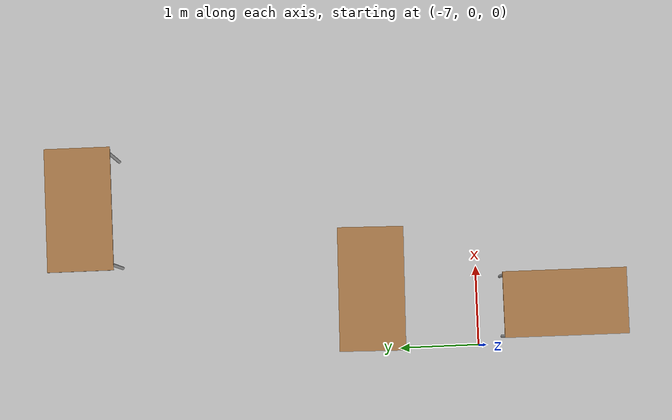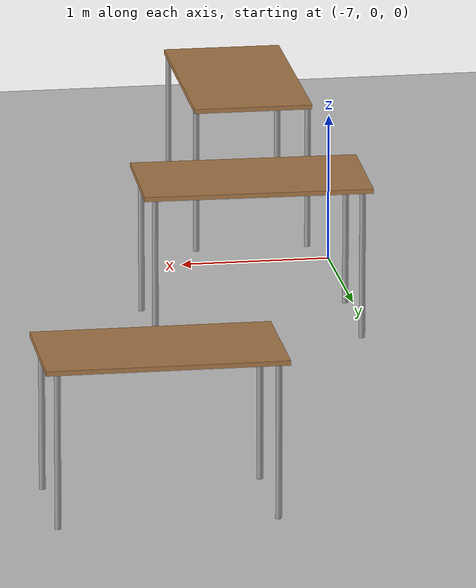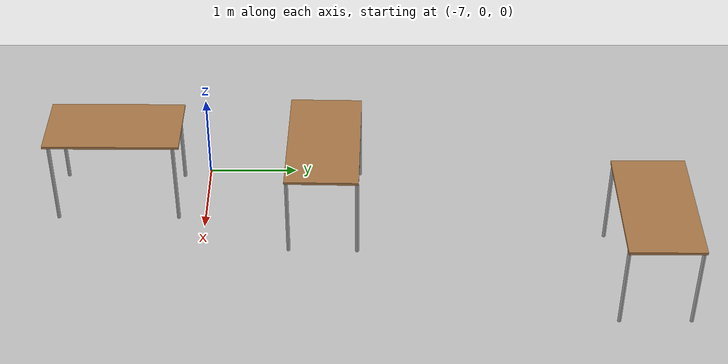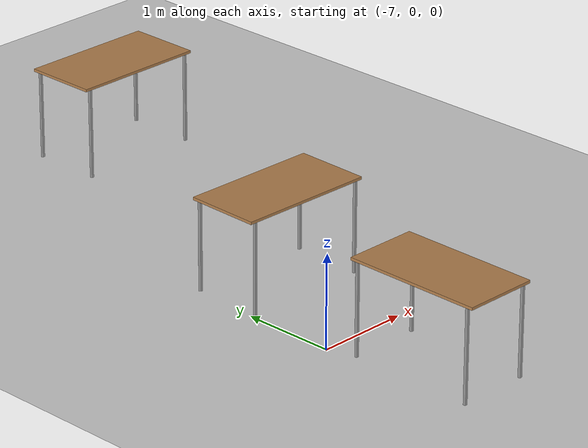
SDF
<sdf version="1.7">
 <world name="default">
  <model name="ground_plane">
   <static>1</static>
   <link name="link_gp">
    <collision name="collision">
     <geometry><plane><normal>0 0 1</normal><size>100 100</size></plane></geometry>
     <surface>
      <contact><collide_bitmask>65535</collide_bitmask></contact>
      <friction><ode><mu>100</mu><mu2>50</mu2></ode></friction>
     </surface>
    </collision>
    <visual name="visual">
     <cast_shadows>0</cast_shadows>
     <geometry><plane><normal>0 0 1</normal><size>100 100</size></plane></geometry>
     <material>
      <script><uri>file://media/materials/scripts/gazebo.material</uri><name>Gazebo/Grey</name></script>
     </material>
    </visual>
   </link>
  </model>
  <model name="table">
   <static>1</static>
   <link name="link_table_0">
    <collision name="surface">
     <pose>0 0 1 0 -0 0</pose>
     <geometry><box><size>1.5 0.8 0.03</size></box></geometry>
     <surface><friction><ode><mu>0.6</mu><mu2>0.6</mu2></ode></friction></surface>
    </collision>
    <visual name="visual1_">
     <pose>0 0 1 0 -0 0</pose>
     <geometry><box><size>1.5 0.8 0.03</size></box></geometry>
     <material>
      <script><uri>file://media/materials/scripts/gazebo.material</uri><name>Gazebo/Wood</name></script>
     </material>
    </visual>
    <collision name="front_left_leg_col">
     <pose>0.68 0.38 0.5 0 -0 0</pose>
     <geometry><cylinder><radius>0.02</radius><length>1</length></cylinder></geometry>
    </collision>
    <visual name="front_left_leg_vi">
     <pose>0.68 0.38 0.5 0 -0 0</pose>
     <geometry><cylinder><radius>0.02</radius><length>1</length></cylinder></geometry>
     <material>
      <script><uri>file://media/materials/scripts/gazebo.material</uri><name>Gazebo/Grey</name></script>
     </material>
    </visual>
    <collision name="front_right_leg_col">
     <pose>0.68 -0.38 0.5 0 -0 0</pose>
     <geometry><cylinder><radius>0.02</radius><length>1</length></cylinder></geometry>
    </collision>
    <visual name="front_right_leg_vi">
     <pose>0.68 -0.38 0.5 0 -0 0</pose>
     <geometry><cylinder><radius>0.02</radius><length>1</length></cylinder></geometry>
     <material>
      <script><uri>file://media/materials/scripts/gazebo.material</uri><name>Gazebo/Grey</name></script>
     </material>
    </visual>
    <collision name="back_right_leg_col">
     <pose>-0.68 -0.38 0.5 0 -0 0</pose>
     <geometry><cylinder><radius>0.02</radius><length>1</length></cylinder></geometry>
    </collision>
    <visual name="back_right_leg_vi">
     <pose>-0.68 -0.38 0.5 0 -0 0</pose>
     <geometry><cylinder><radius>0.02</radius><length>1</length></cylinder></geometry>
     <material>
      <script><uri>file://media/materials/scripts/gazebo.material</uri><name>Gazebo/Grey</name></script>
     </material>
    </visual>
    <collision name="back_left_leg_col">
     <pose>-0.68 0.38 0.5 0 -0 0</pose>
     <geometry><cylinder><radius>0.02</radius><length>1</length></cylinder></geometry>
    </collision>
    <visual name="back_left_leg_vi">
     <pose>-0.68 0.38 0.5 0 -0 0</pose>
     <geometry><cylinder><radius>0.02</radius><length>1</length></cylinder></geometry>
     <material>
      <script><uri>file://media/materials/scripts/gazebo.material</uri><name>Gazebo/Grey</name></script>
     </material>
    </visual>
   </link>
   <pose>-6.52815 -0.980563 0 0 -0 1.56495</pose>
  </model>
  <model name="table_clone_0">
   <static>1</static>
   <link name="link_pallet_15">
    <collision name="surface">
     <pose>0 0 1 0 -0 0</pose>
     <geometry><box><size>1.5 0.8 0.03</size></box></geometry>
     <surface><friction><ode><mu>0.6</mu><mu2>0.6</mu2></ode></friction></surface>
    </collision>
    <visual name="visual1">
     <pose>0 0 1 0 -0 0</pose>
     <geometry><box><size>1.5 0.8 0.03</size></box></geometry>
     <material>
      <script><uri>file://media/materials/scripts/gazebo.material</uri><name>Gazebo/Wood</name></script>
     </material>
    </visual>
    <collision name="front_left_leg_col">
     <pose>0.68 0.38 0.5 0 -0 0</pose>
     <geometry><cylinder><radius>0.02</radius><length>1</length></cylinder></geometry>
    </collision>
    <visual name="front_left_leg_vi">
     <pose>0.68 0.38 0.5 0 -0 0</pose>
     <geometry><cylinder><radius>0.02</radius><length>1</length></cylinder></geometry>
     <material>
      <script><uri>file://media/materials/scripts/gazebo.material</uri><name>Gazebo/Grey</name></script>
     </material>
    </visual>
    <collision name="front_right_leg_col">
     <pose>0.68 -0.38 0.5 0 -0 0</pose>
     <geometry><cylinder><radius>0.02</radius><length>1</length></cylinder></geometry>
    </collision>
    <visual name="front_right_leg_vi">
     <pose>0.68 -0.38 0.5 0 -0 0</pose>
     <geometry><cylinder><radius>0.02</radius><length>1</length></cylinder></geometry>
     <material>
      <script><uri>file://media/materials/scripts/gazebo.material</uri><name>Gazebo/Grey</name></script>
     </material>
    </visual>
    <collision name="back_right_leg_col">
     <pose>-0.68 -0.38 0.5 0 -0 0</pose>
     <geometry><cylinder><radius>0.02</radius><length>1</length></cylinder></geometry>
    </collision>
    <visual name="back_right_leg_vi">
     <pose>-0.68 -0.38 0.5 0 -0 0</pose>
     <geometry><cylinder><radius>0.02</radius><length>1</length></cylinder></geometry>
     <material>
      <script><uri>file://media/materials/scripts/gazebo.material</uri><name>Gazebo/Grey</name></script>
     </material>
    </visual>
    <collision name="back_left_leg_col">
     <pose>-0.68 0.38 0.5 0 -0 0</pose>
     <geometry><cylinder><radius>0.02</radius><length>1</length></cylinder></geometry>
    </collision>
    <visual name="back_left_leg_vi">
     <pose>-0.68 0.38 0.5 0 -0 0</pose>
     <geometry><cylinder><radius>0.02</radius><length>1</length></cylinder></geometry>
     <material>
      <script><uri>file://media/materials/scripts/gazebo.material</uri><name>Gazebo/Grey</name></script>
     </material>
    </visual>
   </link>
   <pose>-5.14977 4.85613 0 0 -0 3.13875</pose>
  </model>
  <model name="table_clone_1">
   <static>1</static>
   <link name="link_pallet_10">
    <collision name="surface">
     <pose>0 0 1 0 -0 0</pose>
     <geometry><box><size>1.5 0.8 0.03</size></box></geometry>
     <surface><friction><ode><mu>0.6</mu><mu2>0.6</mu2></ode></friction></surface>
    </collision>
    <visual name="visual1">
     <pose>0 0 1 0 -0 0</pose>
     <geometry><box><size>1.5 0.8 0.03</size></box></geometry>
     <material>
      <script><uri>file://media/materials/scripts/gazebo.material</uri><name>Gazebo/Wood</name></script>
     </material>
    </visual>
    <collision name="front_left_leg_col">
     <pose>0.68 0.38 0.5 0 -0 0</pose>
     <geometry><cylinder><radius>0.02</radius><length>1</length></cylinder></geometry>
    </collision>
    <visual name="front_left_leg_vi">
     <pose>0.68 0.38 0.5 0 -0 0</pose>
     <geometry><cylinder><radius>0.02</radius><length>1</length></cylinder></geometry>
     <material>
      <script><uri>file://media/materials/scripts/gazebo.material</uri><name>Gazebo/Grey</name></script>
     </material>
    </visual>
    <collision name="front_right_leg_col">
     <pose>0.68 -0.38 0.5 0 -0 0</pose>
     <geometry><cylinder><radius>0.02</radius><length>1</length></cylinder></geometry>
    </collision>
    <visual name="front_right_leg_vi">
     <pose>0.68 -0.38 0.5 0 -0 0</pose>
     <geometry><cylinder><radius>0.02</radius><length>1</length></cylinder></geometry>
     <material>
      <script><uri>file://media/materials/scripts/gazebo.material</uri><name>Gazebo/Grey</name></script>
     </material>
    </visual>
    <collision name="back_right_leg_col">
     <pose>-0.68 -0.38 0.5 0 -0 0</pose>
     <geometry><cylinder><radius>0.02</radius><length>1</length></cylinder></geometry>
    </collision>
    <visual name="back_right_leg_vi">
     <pose>-0.68 -0.38 0.5 0 -0 0</pose>
     <geometry><cylinder><radius>0.02</radius><length>1</length></cylinder></geometry>
     <material>
      <script><uri>file://media/materials/scripts/gazebo.material</uri><name>Gazebo/Grey</name></script>
     </material>
    </visual>
    <collision name="back_left_leg_col">
     <pose>-0.68 0.38 0.5 0 -0 0</pose>
     <geometry><cylinder><radius>0.02</radius><length>1</length></cylinder></geometry>
    </collision>
    <visual name="back_left_leg_vi">
     <pose>-0.68 0.38 0.5 0 -0 0</pose>
     <geometry><cylinder><radius>0.02</radius><length>1</length></cylinder></geometry>
     <material>
      <script><uri>file://media/materials/scripts/gazebo.material</uri><name>Gazebo/Grey</name></script>
     </material>
    </visual>
   </link>
   <pose>-6.26187 1.35511 0 0 -0 3.12024</pose>
  </model>
 </world>
</sdf>
